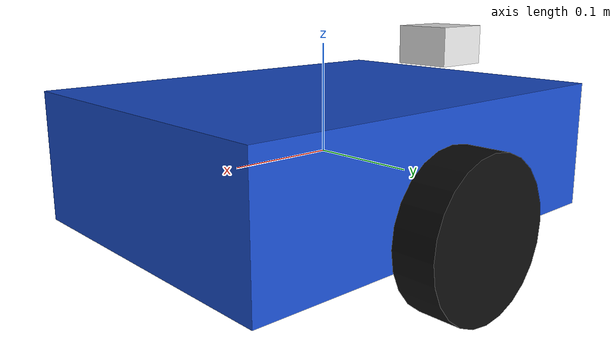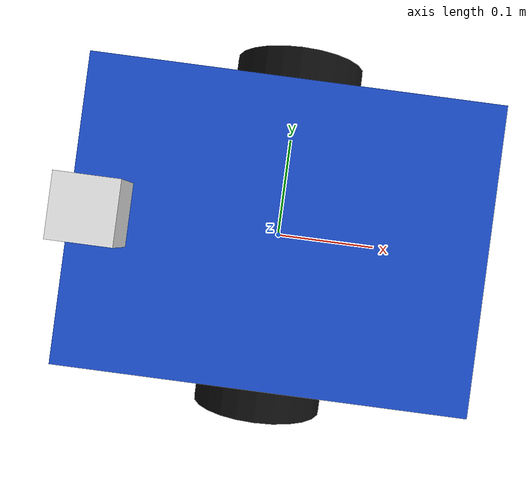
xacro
<?xml version="1.0"?>

<robot xmlns:xacro="http://www.ros.org/wiki/xacro"
       name="robot1">

  <xacro:property name="chassis_length" value="0.4"/>
  <xacro:property name="chassis_width"  value="0.3"/>
  <xacro:property name="chassis_height" value="0.12"/>
  <xacro:property name="wheel_radius" value="0.07"/>
  <xacro:property name="wheel_width"  value="0.04"/>
  <xacro:property name="caster_radius" value="0.04"/>

  <material name="blue">
    <color rgba="0.1 0.3 0.8 1"/>
  </material>

  <material name="black">
    <color rgba="0.05 0.05 0.05 1"/>
  </material>

  <material name="white">
    <color rgba="0.9 0.9 0.9 1"/>
  </material>

  <link name="base_link">
    <visual>
      <origin xyz="0 0 0"/>
      <geometry>
        <box size="${chassis_length} ${chassis_width} ${chassis_height}"/>
      </geometry>
      <material name="blue"/>
    </visual>

    <collision>
      <origin xyz="0 0 0"/>
      <geometry>
        <box size="${chassis_length} ${chassis_width} ${chassis_height}"/>
      </geometry>
    </collision>

    <inertial>
      <origin xyz="0 0 0"/>
      <mass value="5.0"/>
      <inertia
        ixx="0.1"
        ixy="0.0"
        ixz="0.0"
        iyy="0.1"
        iyz="0.0"
        izz="0.1"/>
    </inertial>
  </link>

  <link name="left_wheel">
    <visual>
      <origin xyz="0 0 0" rpy="${pi/2} 0 0"/>
      <geometry>
        <cylinder radius="${wheel_radius}" length="${wheel_width}"/>
      </geometry>
      <material name="black"/>
    </visual>

    <collision>
      <origin xyz="0 0 0" rpy="${pi/2} 0 0"/>
      <geometry>
        <cylinder
          radius="${wheel_radius}"
          length="${wheel_width}"/>
      </geometry>
    </collision>

    <inertial>
      <mass value="0.5"/>
      <inertia
        ixx="0.001"
        ixy="0"
        ixz="0"
        iyy="0.001"
        iyz="0"
        izz="0.001"/>
    </inertial>
  </link>

  <joint name="left_wheel_joint" type="continuous">
    <parent link="base_link"/>
    <child link="left_wheel"/>
    <origin
      xyz="0 ${chassis_width/2 + wheel_width/2} -${caster_radius}" rpy="0 0 0"/>
    <axis xyz="0 1 0"/>
  </joint>

  <link name="right_wheel">
    <visual>
      <origin xyz="0 0 0" rpy="${pi/2} 0 0"/>

      <geometry>
        <cylinder
          radius="${wheel_radius}" length="${wheel_width}"/>
      </geometry>
      <material name="black"/>
    </visual>

    <collision>
      <origin xyz="0 0 0" rpy="${pi/2} 0 0"/>
      <geometry>
        <cylinder radius="${wheel_radius}" length="${wheel_width}"/>
      </geometry>
    </collision>

    <inertial>
      <mass value="0.5"/>
      <inertia
        ixx="0.001"
        ixy="0"
        ixz="0"
        iyy="0.001"
        iyz="0"
        izz="0.001"/>
    </inertial>
  </link>

  <joint name="right_wheel_joint" type="continuous">
    <parent link="base_link"/>
    <child link="right_wheel"/>
    <origin xyz="0 -${chassis_width/2 + wheel_width/2} -${caster_radius}" rpy="0 0 0"/>
    <axis xyz="0 1 0"/>
  </joint>

  <link name="caster_wheel">
    <visual>
      <geometry>
        <sphere radius="${caster_radius}"/>
      </geometry>
      <material name="black"/>
    </visual>

    <collision>
      <geometry>
        <sphere radius="${caster_radius}"/>
      </geometry>
    </collision>

    <inertial>
      <mass value="0.2"/>
      <inertia
        ixx="0.0001"
        ixy="0"
        ixz="0"
        iyy="0.0001"
        iyz="0"
        izz="0.0001"/>
    </inertial>
  </link>

  <joint name="caster_joint" type="fixed">
    <parent link="base_link"/>
    <child link="caster_wheel"/>
    <origin
      xyz="${-chassis_length/2 + 0.05} 0 ${-chassis_height/2}" rpy="0 0 0"/>
  </joint>

  <link name="camera_link">
    <visual>
      <geometry>
        <box size="0.06 0.06 0.04"/>
      </geometry>
      <material name="white"/>
    </visual>
  </link>

  <joint name="camera_joint" type="fixed">
    <parent link="base_link"/>
    <child link="camera_link"/>
    <origin xyz="-${chassis_length/2 - 0.03} 0 ${chassis_height/2 + 0.03}" rpy="0 0 0"/>
  </joint>

<gazebo>
     <plugin filename="gz-sim-diff-drive-system" name="gz::sim::systems::DiffDrive">

    <!-- wheels -->
    <left_wheel_joint>drivewhl_l_joint</left_wheel_joint>
    <right_wheel_joint>drivewhl_r_joint</right_wheel_joint>

    <!-- kinematics -->
    <wheel_separation>0.4</wheel_separation>
    <wheel_diameter>0.2</wheel_diameter>

    <!-- limits -->
    <max_wheel_torque>80</max_wheel_torque>
    <max_wheel_acceleration>1.0</max_wheel_acceleration>

    <!-- output -->
    <publish_odom>true</publish_odom>
    <publish_odom_tf>false</publish_odom_tf>
    <publish_wheel_tf>true</publish_wheel_tf>

    <odometry_frame>odom</odometry_frame>
    <robot_base_frame>base_link</robot_base_frame>
  </plugin>
</gazebo>

</robot>
